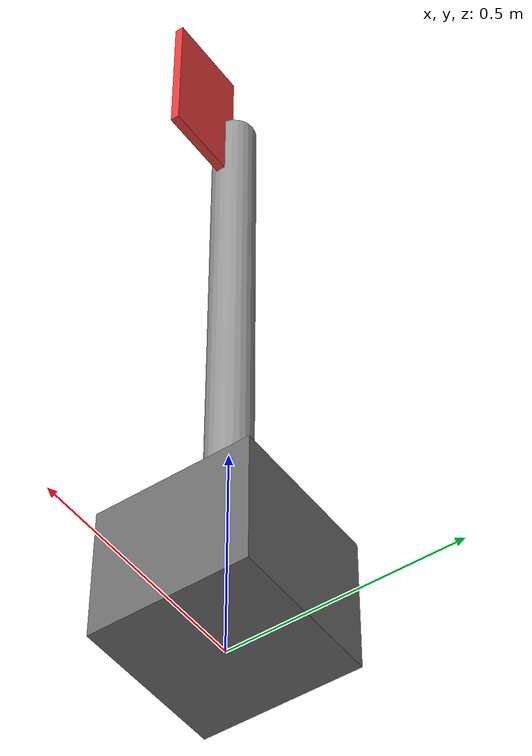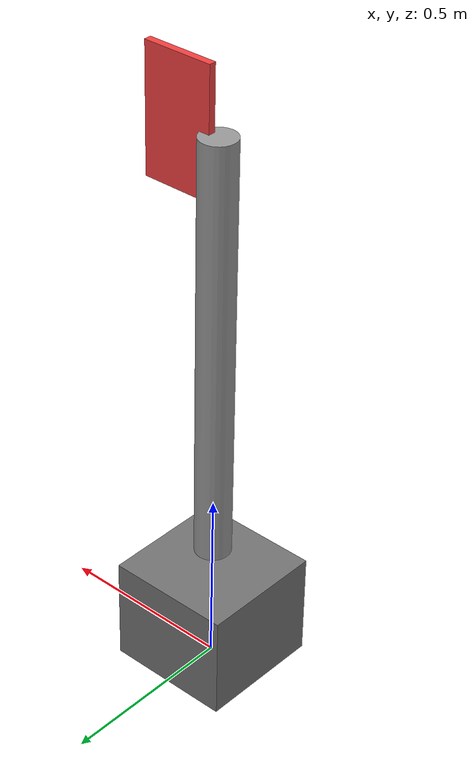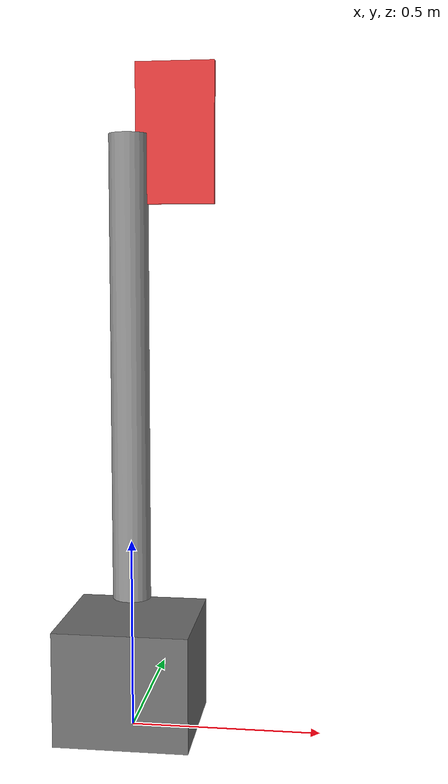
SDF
<?xml version="1.0"?>
<sdf version="1.7">
  <model name="bird_scare_post">
    <!-- Main body of the deterrent post. -->
    <link name="post_base">
      <pose>0 0 0.15 0 0 0</pose>
      <inertial>
        <mass>8.0</mass>
        <inertia>
          <ixx>0.18</ixx>
          <iyy>0.18</iyy>
          <izz>0.12</izz>
          <ixy>0.0</ixy>
          <ixz>0.0</ixz>
          <iyz>0.0</iyz>
        </inertia>
      </inertial>

      <collision name="base_collision">
        <geometry>
          <box>
            <size>0.35 0.35 0.30</size>
          </box>
        </geometry>
      </collision>

      <visual name="base_visual">
        <geometry>
          <box>
            <size>0.35 0.35 0.30</size>
          </box>
        </geometry>
        <material>
          <ambient>0.35 0.35 0.35 1.0</ambient>
          <diffuse>0.45 0.45 0.45 1.0</diffuse>
          <specular>0.15 0.15 0.15 1.0</specular>
        </material>
      </visual>
    </link>

    <!-- Vertical support that rises above the base. -->
    <link name="post_support">
      <pose>0 0 0.95 0 0 0</pose>
      <inertial>
        <mass>3.5</mass>
        <inertia>
          <ixx>0.04</ixx>
          <iyy>0.04</iyy>
          <izz>0.01</izz>
          <ixy>0.0</ixy>
          <ixz>0.0</ixz>
          <iyz>0.0</iyz>
        </inertia>
      </inertial>

      <collision name="support_collision">
        <geometry>
          <cylinder>
            <radius>0.05</radius>
            <length>1.20</length>
          </cylinder>
        </geometry>
      </collision>

      <visual name="support_visual">
        <geometry>
          <cylinder>
            <radius>0.05</radius>
            <length>1.20</length>
          </cylinder>
        </geometry>
        <material>
          <ambient>0.5 0.5 0.5 1.0</ambient>
          <diffuse>0.6 0.6 0.6 1.0</diffuse>
          <specular>0.2 0.2 0.2 1.0</specular>
        </material>
      </visual>
    </link>

    <!-- Warning panel attached near the top of the support. -->
    <link name="warning_panel">
      <pose>0.12 0 1.55 0 0 0</pose>
      <inertial>
        <mass>1.2</mass>
        <inertia>
          <ixx>0.008</ixx>
          <iyy>0.006</iyy>
          <izz>0.004</izz>
          <ixy>0.0</ixy>
          <ixz>0.0</ixz>
          <iyz>0.0</iyz>
        </inertia>
      </inertial>

      <collision name="panel_collision">
        <geometry>
          <box>
            <size>0.20 0.02 0.35</size>
          </box>
        </geometry>
      </collision>

      <visual name="panel_visual">
        <geometry>
          <box>
            <size>0.20 0.02 0.35</size>
          </box>
        </geometry>
        <material>
          <ambient>0.8 0.2 0.2 1.0</ambient>
          <diffuse>0.95 0.25 0.25 1.0</diffuse>
          <specular>0.2 0.2 0.2 1.0</specular>
        </material>
      </visual>
    </link>

    <!-- Fixed joint connecting the base to the support. -->
    <joint name="base_to_support_joint" type="fixed">
      <parent>post_base</parent>
      <child>post_support</child>
      <pose>0 0 -0.55 0 0 0</pose>
    </joint>

    <!-- Fixed joint connecting the support to the warning panel. -->
    <joint name="support_to_panel_joint" type="fixed">
      <parent>post_support</parent>
      <child>warning_panel</child>
      <pose>0 0 -0.15 0 0 0</pose>
    </joint>
  </model>
</sdf>
